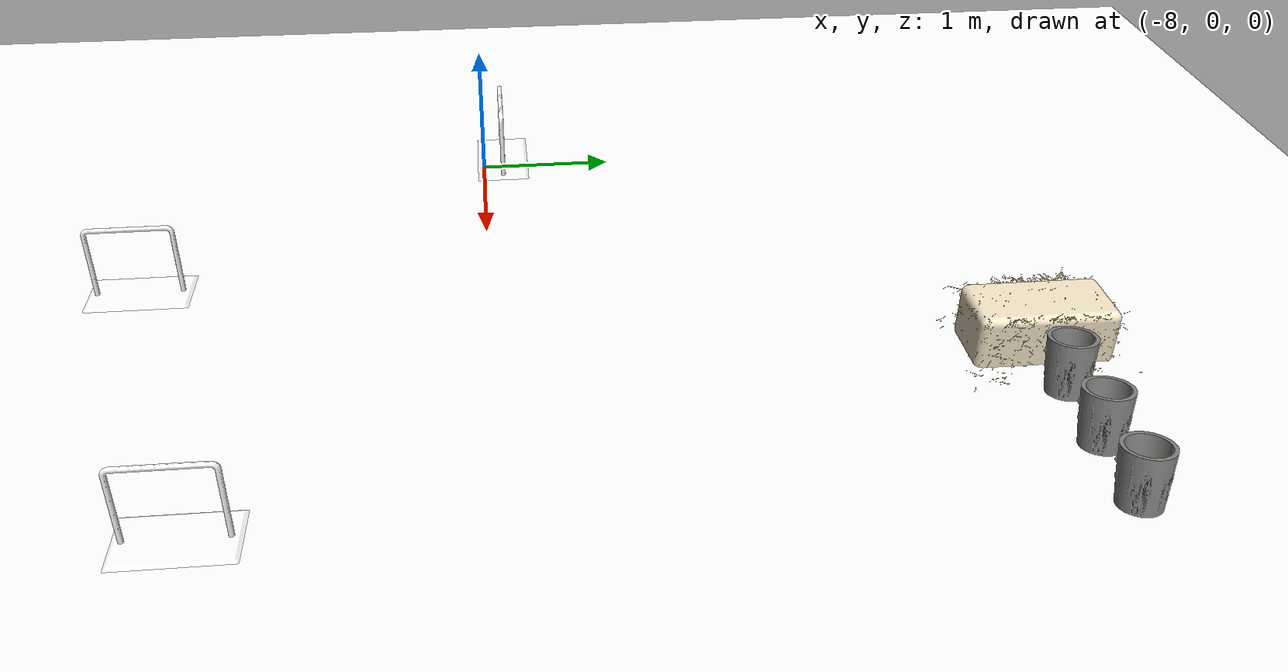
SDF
<sdf version="1.10">
 <world name="cfr_obstacle_course">
  <model name="ground">
   <static>true</static>
   <pose>0.005 -4.540 0 0 0 0</pose>
   <link name="link">
    <collision name="collision">
     <geometry><plane><normal>0 0 1</normal><size>30 24</size></plane></geometry>
     <surface>
      <friction>
       <ode><mu>50</mu></ode>
       <bullet><friction>1</friction><rolling_friction>0.001</rolling_friction></bullet>
      </friction>
     </surface>
    </collision>
    <visual name="visual">
     <geometry><plane><normal>0 0 1</normal><size>30 24</size></plane></geometry>
     <material>
      <diffuse>1 1 1 1</diffuse>
      <pbr>
       <metal>
        <albedo_map>model://cfr_arduino_bridge/materials/asphalt_obstacle.png</albedo_map>
        <roughness>0.95</roughness>
        <metalness>0</metalness>
       </metal>
      </pbr>
     </material>
    </visual>
   </link>
  </model>
  <model name="gap_bale_0">
   <static>true</static>
   <pose>-5.2574 3.5371 0 0 0 4.71239</pose>
   <link name="link">
    <collision name="bale_collision">
     <pose>0.0000 0.0000 0.1778 0.0000 0.0000 0.0000</pose>
     <geometry><box><size>0.9144 0.4572 0.3556</size></box></geometry>
     <surface>
      <friction>
       <ode><mu>0.2</mu><mu2>1.0</mu2><fdir1>0 0 1</fdir1></ode>
       <bullet><friction>0.2</friction><friction2>1.0</friction2></bullet>
      </friction>
     </surface>
    </collision>
    <visual name="bale_visual">
     <pose>0.0000 0.0000 0.1778 0.0000 0.0000 0.0000</pose>
     <geometry><mesh><uri>model://cfr_arduino_bridge/meshes/straw_bale.obj</uri></mesh></geometry>
     <material>
      <diffuse>0.945 0.889 0.775 1</diffuse>
      <specular>0.04 0.04 0.03 1</specular>
      <pbr>
       <metal>
        <albedo_map>model://cfr_arduino_bridge/materials/straw_bale_2.png</albedo_map>
        <normal_map>model://cfr_arduino_bridge/materials/straw_bale_normal.png</normal_map>
        <roughness>0.95</roughness>
        <metalness>0</metalness>
       </metal>
      </pbr>
     </material>
    </visual>
    <visual name="bale_strands">
     <pose>0.0000 0.0000 0.1778 0.0000 0.0000 0.0000</pose>
     <geometry><mesh><uri>model://cfr_arduino_bridge/meshes/bale_strands_2.stl</uri></mesh></geometry>
     <material><diffuse>0.74 0.63 0.40 1</diffuse><specular>0.05 0.05 0.04 1</specular></material>
     <cast_shadows>false</cast_shadows>
    </visual>
   </link>
  </model>
  <model name="bucket_6">
   <static>true</static>
   <pose>-3.7574 3.5371 0 0 0 0</pose>
   <link name="link">
    <visual name="bucket_visual">
     <geometry><mesh><uri>model://cfr_arduino_bridge/meshes/bucket.stl</uri></mesh></geometry>
     <material><diffuse>0.52 0.52 0.51 1</diffuse></material>
    </visual>
    <collision name="body_collision">
     <pose>0.0000 0.0000 0.1900 0.0000 0.0000 0.0000</pose>
     <geometry><cylinder><radius>0.1450</radius><length>0.3800</length></cylinder></geometry>
    </collision>
   </link>
  </model>
  <model name="bucket_7">
   <static>true</static>
   <pose>-4.2574 3.5371 0 0 0 0</pose>
   <link name="link">
    <visual name="bucket_visual">
     <geometry><mesh><uri>model://cfr_arduino_bridge/meshes/bucket.stl</uri></mesh></geometry>
     <material><diffuse>0.52 0.52 0.51 1</diffuse></material>
    </visual>
    <collision name="body_collision">
     <pose>0.0000 0.0000 0.1900 0.0000 0.0000 0.0000</pose>
     <geometry><cylinder><radius>0.1450</radius><length>0.3800</length></cylinder></geometry>
    </collision>
   </link>
  </model>
  <model name="bucket_8">
   <static>true</static>
   <pose>-4.7574 3.5371 0 0 0 0</pose>
   <link name="link">
    <visual name="bucket_visual">
     <geometry><mesh><uri>model://cfr_arduino_bridge/meshes/bucket.stl</uri></mesh></geometry>
     <material><diffuse>0.52 0.52 0.51 1</diffuse></material>
    </visual>
    <collision name="body_collision">
     <pose>0.0000 0.0000 0.1900 0.0000 0.0000 0.0000</pose>
     <geometry><cylinder><radius>0.1450</radius><length>0.3800</length></cylinder></geometry>
    </collision>
   </link>
  </model>
  <model name="hoop_0">
   <static>true</static>
   <pose>-3.9405 -1.7118 0 0 0 1.57080</pose>
   <link name="link">
    <visual name="hoop_visual">
     <geometry><mesh><uri>model://cfr_arduino_bridge/meshes/hoop.stl</uri></mesh></geometry>
     <material><diffuse>1 1 1 1</diffuse></material>
    </visual>
    <collision name="base_collision">
     <pose>0.0000 0.0000 0.0065 0.0000 0.0000 0.0000</pose>
     <geometry><box><size>0.7090 0.4050 0.0130</size></box></geometry>
    </collision>
    <collision name="upright_-1_collision">
     <pose>-0.2920 0.0000 0.2600 0.0000 0.0000 0.0000</pose>
     <geometry><cylinder><radius>0.0170</radius><length>0.5200</length></cylinder></geometry>
    </collision>
    <collision name="upright_1_collision">
     <pose>0.2920 0.0000 0.2600 0.0000 0.0000 0.0000</pose>
     <geometry><cylinder><radius>0.0170</radius><length>0.5200</length></cylinder></geometry>
    </collision>
   </link>
  </model>
  <model name="hoop_1">
   <static>true</static>
   <pose>-6.3703 -2.4049 0 0 0 1.57080</pose>
   <link name="link">
    <visual name="hoop_visual">
     <geometry><mesh><uri>model://cfr_arduino_bridge/meshes/hoop.stl</uri></mesh></geometry>
     <material><diffuse>1 1 1 1</diffuse></material>
    </visual>
    <collision name="base_collision">
     <pose>0.0000 0.0000 0.0065 0.0000 0.0000 0.0000</pose>
     <geometry><box><size>0.7090 0.4050 0.0130</size></box></geometry>
    </collision>
    <collision name="upright_-1_collision">
     <pose>-0.2920 0.0000 0.2600 0.0000 0.0000 0.0000</pose>
     <geometry><cylinder><radius>0.0170</radius><length>0.5200</length></cylinder></geometry>
    </collision>
    <collision name="upright_1_collision">
     <pose>0.2920 0.0000 0.2600 0.0000 0.0000 0.0000</pose>
     <geometry><cylinder><radius>0.0170</radius><length>0.5200</length></cylinder></geometry>
    </collision>
   </link>
  </model>
  <model name="hoop_2">
   <static>true</static>
   <pose>-8.1350 0.1489 0 0 0 0.00000</pose>
   <link name="link">
    <visual name="hoop_visual">
     <geometry><mesh><uri>model://cfr_arduino_bridge/meshes/hoop.stl</uri></mesh></geometry>
     <material><diffuse>1 1 1 1</diffuse></material>
    </visual>
    <collision name="base_collision">
     <pose>0.0000 0.0000 0.0065 0.0000 0.0000 0.0000</pose>
     <geometry><box><size>0.7090 0.4050 0.0130</size></box></geometry>
    </collision>
    <collision name="upright_-1_collision">
     <pose>-0.2920 0.0000 0.2600 0.0000 0.0000 0.0000</pose>
     <geometry><cylinder><radius>0.0170</radius><length>0.5200</length></cylinder></geometry>
    </collision>
    <collision name="upright_1_collision">
     <pose>0.2920 0.0000 0.2600 0.0000 0.0000 0.0000</pose>
     <geometry><cylinder><radius>0.0170</radius><length>0.5200</length></cylinder></geometry>
    </collision>
   </link>
  </model>
 </world>
</sdf>
